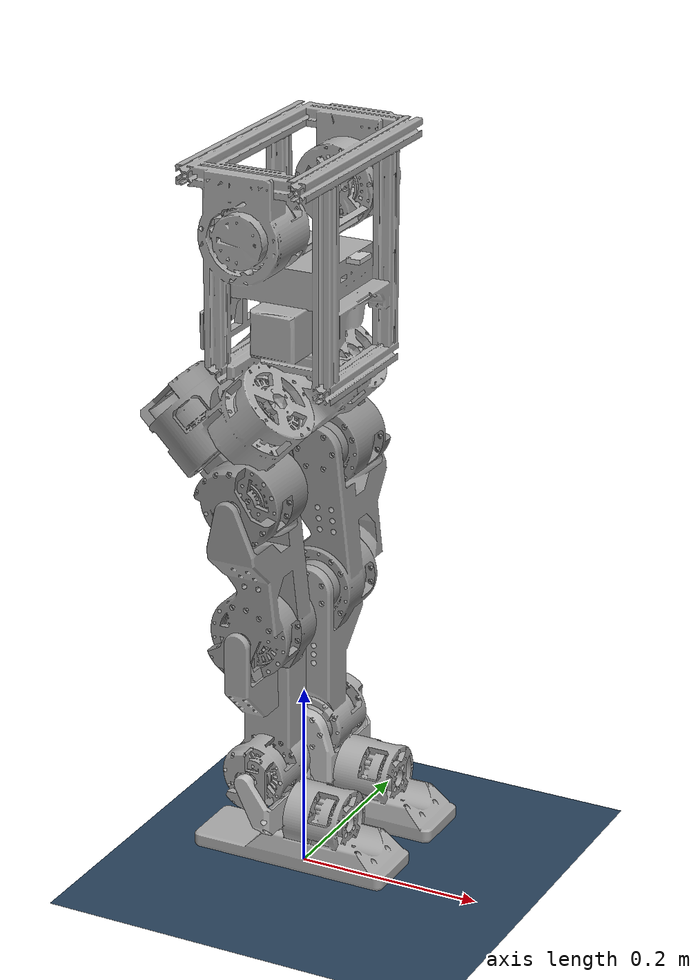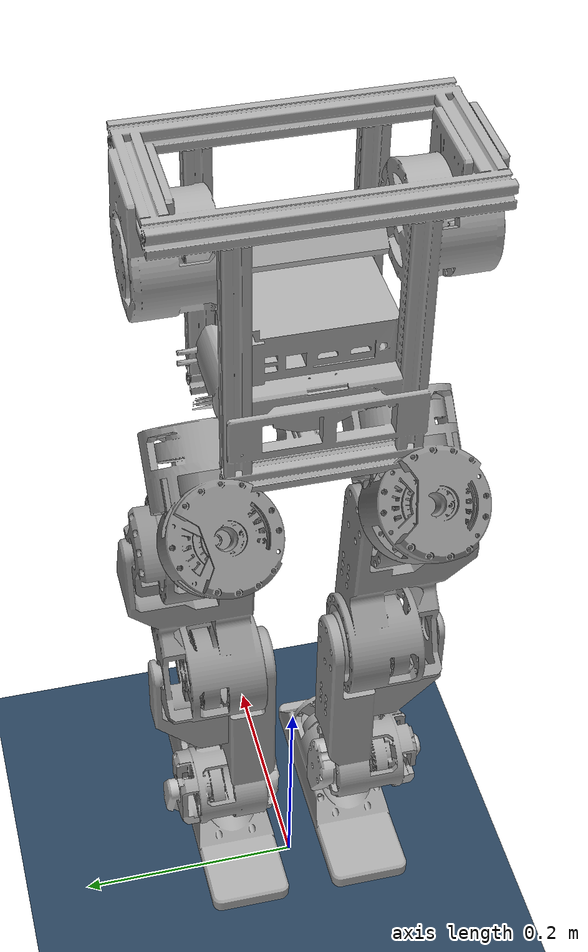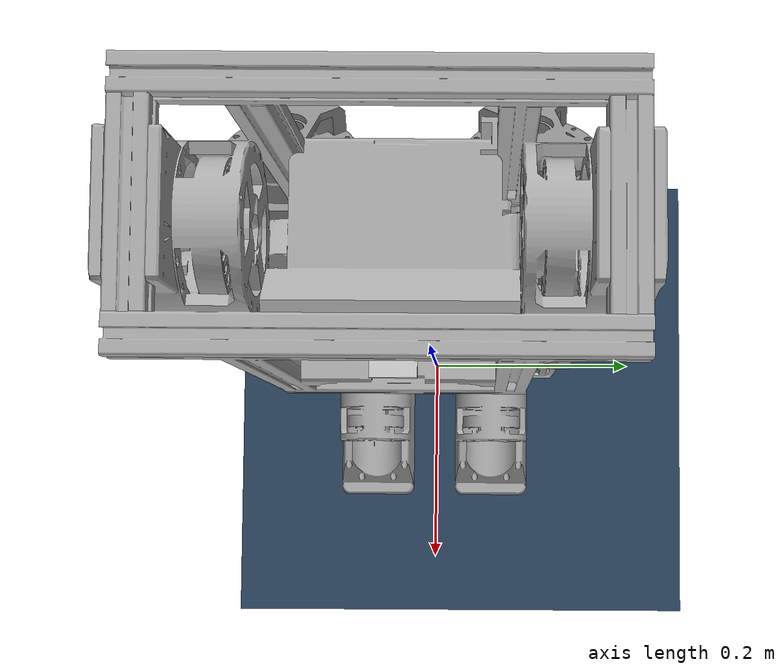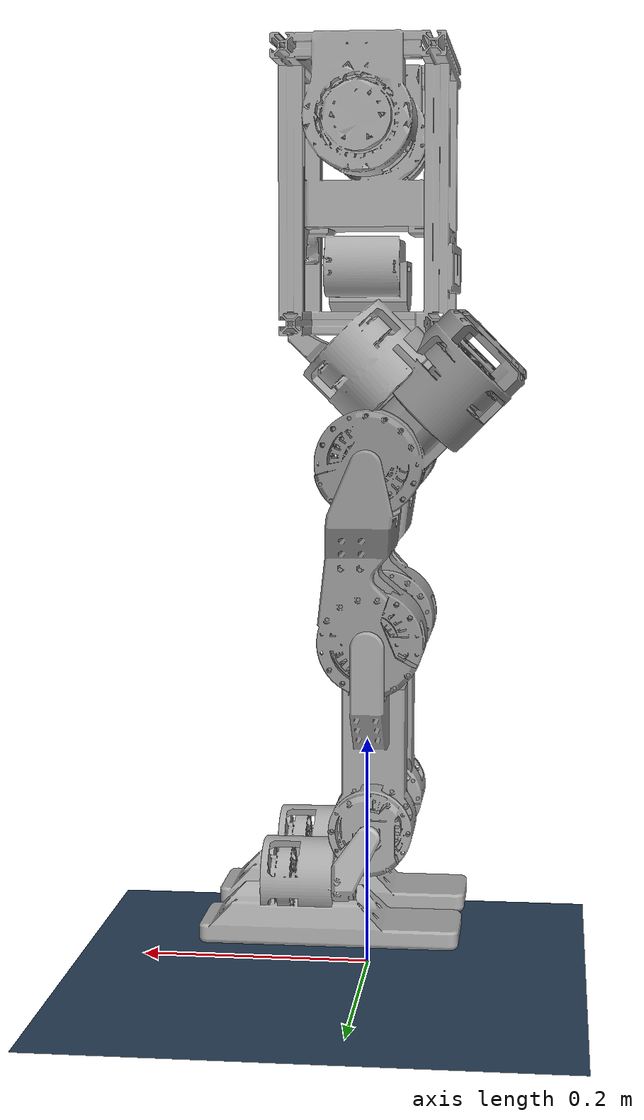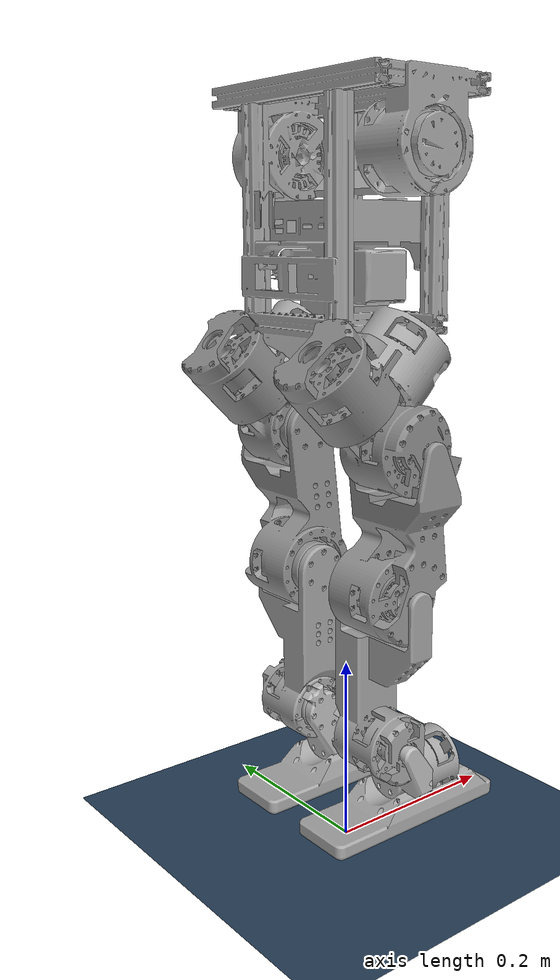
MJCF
<mujoco model="berkeley-humanoid-lite-biped-scene">
  <include file="berkeley_humanoid_lite_biped.xml"/>

  <statistic center="0 0 0.1" extent="0.8"/>

  <visual>
    <headlight diffuse="0.6 0.6 0.6" ambient="0.3 0.3 0.3" specular="0 0 0"/>
    <rgba haze="0.15 0.25 0.35 1"/>
    <global azimuth="120" elevation="-20"/>
  </visual>

  <asset>
    <texture type="skybox" builtin="gradient" rgb1="0.3 0.5 0.7" rgb2="0 0 0" width="512" height="3072"/>
    <texture type="2d" name="groundplane" builtin="checker" mark="edge" rgb1="0.2 0.3 0.4" rgb2="0.1 0.2 0.3"
      markrgb="0.8 0.8 0.8" width="300" height="300"/>
    <material name="groundplane" texture="groundplane" texuniform="true" texrepeat="5 5" reflectance="0.2"/>
  </asset>

  <worldbody>
    <light pos="0 0 1.5" dir="0 0 -1" directional="true"/>
    <geom name="floor" size="0 0 0.05" type="plane" material="groundplane"/>
  </worldbody>
</mujoco>

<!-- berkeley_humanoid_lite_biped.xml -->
<!-- Generated using onshape-to-robot -->
<!-- Onshape document_id: fc6443b1d89dcba950e85b60 -->
<mujoco model="berkeley-humanoid-lite">
  <compiler angle="radian" meshdir="assets" autolimits="true"/>
  <default>
    <default class="berkeley-humanoid-lite">
      <joint frictionloss="0.1" armature="0.005"/>
      <position kp="50" dampratio="1"/>
      <default class="visual">
        <geom type="mesh" contype="0" conaffinity="0" group="2"/>
      </default>
      <default class="collision">
        <geom group="3"/>
      </default>
    </default>
  </default>
  <worldbody>
    <!-- Link base -->
    <body name="base" pos="0 0 0" quat="1 0 0 0" childclass="berkeley-humanoid-lite">
      <freejoint name="base_freejoint"/>
      <inertial pos="-0.00461671 0.000372279 0.637874" mass="3.16059" fullinertia="0.0372453 0.0282653 0.0176468 -4.06135e-06 -0.000720627 -1.49369e-05"/>
      <!-- Part base_parts -->
      <geom class="collision" pos="-6.93889e-18 7.53521e-18 0.71" quat="0.707107 -2.11466e-15 1.77636e-15 -0.707107" type="box" size="0.075 0.07 0.115"/>
      <geom type="mesh" class="visual" pos="-0.00461671 0.000372279 0.637874" quat="1 0 0 0" mesh="base_visual" material="base_visual_material"/>
      <!-- Link imu_2 -->
      <body name="imu_2" pos="0.061722 -5.97549e-17 0.68" quat="1 -0 5.55112e-15 -6.03078e-16">
        <!-- Joint from base to imu_2 -->
        <!-- Joint is "fixed", skipping it -->
        <inertial pos="2.95445e-18 9.47955e-19 0.0025" mass="0.00197704" fullinertia="1.11441e-07 4.06118e-08 1.43815e-07 -1.67651e-38 0 7.34684e-40"/>
        <!-- Part imu_2_parts -->
        <geom type="mesh" class="visual" pos="0 9.47955e-19 0.0025" quat="1 -0 -5.44009e-15 6.03078e-16" mesh="imu_2_visual" material="imu_2_visual_material"/>
        <!-- Frame imu -->
        <site group="3" name="imu" pos="0 -6.33816e-19 0.005" quat="1 0 0 0"/>
      </body>
      <!-- Link leg_left_hip_roll -->
      <body name="leg_left_hip_roll" pos="-0.0290919 0.08 0.542631" quat="0.92388 1.48514e-15 0.382683 -3.22352e-15">
        <!-- Joint from base to leg_left_hip_roll -->
        <joint axis="0 0 1" name="leg_left_hip_roll_joint" type="hinge" range="-0.17453292519942673 1.5707963267949028"/>
        <inertial pos="-0.00410941 -0.000112596 -0.0464623" mass="0.83786" fullinertia="0.000979918 0.000896043 0.000727678 6.45954e-06 -1.63173e-05 -5.43389e-06"/>
        <!-- Part leg_left_hip_roll_parts -->
        <geom type="mesh" class="visual" pos="-0.00410941 -0.000112596 -0.0464623" quat="0.92388 -1.51757e-15 -0.382683 3.20399e-15" mesh="leg_left_hip_roll_visual" material="leg_left_hip_roll_visual_material"/>
        <!-- Link leg_left_hip_yaw -->
        <body name="leg_left_hip_yaw" pos="0.027 -1.38778e-17 -0.052" quat="0.5 -0.5 0.5 -0.5">
          <!-- Joint from leg_left_hip_roll to leg_left_hip_yaw -->
          <joint axis="0 0 1" name="leg_left_hip_yaw_joint" type="hinge" range="-0.9817477042468095 0.5890486225480871"/>
          <inertial pos="-0.00411632 -8.63203e-05 0.0463382" mass="0.837683" fullinertia="0.000979031 0.000898166 0.000724287 -1.13217e-06 1.96352e-05 -5.91541e-06"/>
          <!-- Part leg_left_hip_yaw_parts -->
          <geom type="mesh" class="visual" pos="-0.00411632 -8.63203e-05 0.0463382" quat="0.270598 0.653281 -0.653281 0.270598" mesh="leg_left_hip_yaw_visual" material="leg_left_hip_yaw_visual_material"/>
          <!-- Link leg_left_hip_pitch -->
          <body name="leg_left_hip_pitch" pos="0.027 5.55112e-17 0.052" quat="0.653281 0.270598 -0.653281 -0.270598">
            <!-- Joint from leg_left_hip_yaw to leg_left_hip_pitch -->
            <joint axis="0 0 1" name="leg_left_hip_pitch_joint" type="hinge" range="-1.8980455615438334 0.9817477042468103"/>
            <inertial pos="0.0030405 0.120388 0.0210924" mass="0.947974" fullinertia="0.00286449 0.00102465 0.00259958 0.00012235 -2.15676e-05 0.000265775"/>
            <!-- Part leg_left_hip_pitch_parts -->
            <geom class="collision" pos="0.00597627 0.039 0.0295" quat="0.5 0.5 0.5 -0.5" type="cylinder" size="0.05 0.065"/>
            <geom type="mesh" class="visual" pos="0.0030405 0.120388 0.0210924" quat="0.707107 0.707107 -3.77476e-15 1.5388e-15" mesh="leg_left_hip_pitch_visual" material="leg_left_hip_pitch_visual_material"/>
            <!-- Link leg_left_knee_pitch -->
            <body name="leg_left_knee_pitch" pos="4.02456e-16 0.15 -0.018" quat="9.83274e-15 4.47488e-16 2.22045e-16 -1">
              <!-- Joint from leg_left_hip_pitch to leg_left_knee_pitch -->
              <joint axis="0 0 1" name="leg_left_knee_pitch_joint" type="hinge" range="-2.7711166694643907e-13 2.443460952791784"/>
              <inertial pos="-4.14041e-05 -0.112249 0.0257397" mass="0.653864" fullinertia="0.00230126 0.000559753 0.00203727 -4.24923e-07 1.36589e-06 3.7889e-05"/>
              <!-- Part leg_left_knee_pitch_parts -->
              <geom class="collision" pos="-5.42149e-15 -0.115 0.022" quat="0.5 -0.5 0.5 0.5" type="cylinder" size="0.04 0.075"/>
              <geom type="mesh" class="visual" pos="-4.14041e-05 -0.112249 0.0257397" quat="5.61286e-15 1.04083e-14 0.707107 0.707107" mesh="leg_left_knee_pitch_visual" material="leg_left_knee_pitch_visual_material"/>
              <!-- Link leg_left_ankle_pitch -->
              <body name="leg_left_ankle_pitch" pos="-2.44943e-15 -0.16 -0.003" quat="7.23276e-14 3.08655e-16 4.44089e-16 -1">
                <!-- Joint from leg_left_knee_pitch to leg_left_ankle_pitch -->
                <joint axis="0 0 1" name="leg_left_ankle_pitch_joint" type="hinge" range="-0.7853981633972573 0.7853981633976392"/>
                <inertial pos="0.0131065 0.0273743 0.0274153" mass="0.106196" fullinertia="0.000188241 0.000142962 8.17202e-05 -2.50802e-05 -7.26755e-06 -7.72963e-06"/>
                <!-- Part leg_left_ankle_pitch_parts -->
                <geom type="mesh" class="visual" pos="0.0131065 0.0273743 0.0274153" quat="0.707107 0.707107 -6.18394e-14 -5.65723e-14" mesh="leg_left_ankle_pitch_visual" material="leg_left_ankle_pitch_visual_material"/>
                <!-- Link leg_left_ankle_roll -->
                <body name="leg_left_ankle_roll" pos="0.03 0.05 0.025" quat="0.707107 5.97287e-14 0.707107 6.29358e-14">
                  <!-- Joint from leg_left_ankle_pitch to leg_left_ankle_roll -->
                  <joint axis="0 0 1" name="leg_left_ankle_roll_joint" type="hinge" range="-0.26179938779931816 0.26179938779898065"/>
                  <inertial pos="2.29341e-05 0.0226611 0.0197836" mass="0.706476" fullinertia="0.00198705 0.00190341 0.000619673 5.37011e-07 -8.3949e-07 0.000143151"/>
                  <!-- Part leg_left_ankle_roll_parts -->
                  <geom class="collision" pos="1.45315e-14 0.03 0.006" quat="0.707107 0.707107 -8.02691e-14 3.1405e-14" type="box" size="0.036 0.11 0.02"/>
                  <geom type="mesh" class="visual" pos="2.29341e-05 0.0226611 0.0197836" quat="0.5 0.5 -0.5 0.5" mesh="leg_left_ankle_roll_visual" material="leg_left_ankle_roll_visual_material"/>
                </body>
              </body>
            </body>
          </body>
        </body>
      </body>
      <!-- Link leg_right_hip_roll -->
      <body name="leg_right_hip_roll" pos="-0.0290919 -0.08 0.542631" quat="3.33405e-15 0.382683 -1.44329e-15 0.92388">
        <!-- Joint from base to leg_right_hip_roll -->
        <joint axis="0 0 1" name="leg_right_hip_roll_joint" type="hinge" range="-1.5707963267948895 0.17453292519944005"/>
        <inertial pos="0.00410941 -0.00018505 -0.0464478" mass="0.83786" fullinertia="0.000979766 0.000896334 0.000727235 -3.69135e-06 1.57667e-05 -4.74708e-06"/>
        <!-- Part leg_right_hip_roll_parts -->
        <geom type="mesh" class="visual" pos="0.00410941 -0.00018505 -0.0464478" quat="3.28567e-15 -0.382683 1.44329e-15 -0.92388" mesh="leg_right_hip_roll_visual" material="leg_right_hip_roll_visual_material"/>
        <!-- Link leg_right_hip_yaw -->
        <body name="leg_right_hip_yaw" pos="-0.027 -1.38778e-17 -0.052" quat="0.5 -0.5 -0.5 0.5">
          <!-- Joint from leg_right_hip_roll to leg_right_hip_yaw -->
          <joint axis="0 0 1" name="leg_right_hip_yaw_joint" type="hinge" range="-0.5890486225480871 0.9817477042468095"/>
          <inertial pos="0.00411632 -1.3851e-05 0.0463238" mass="0.837683" fullinertia="0.000978901 0.000898454 0.000723868 -1.63559e-06 -1.90847e-05 -5.23378e-06"/>
          <!-- Part leg_right_hip_yaw_parts -->
          <geom type="mesh" class="visual" pos="0.00411632 -1.3851e-05 0.0463238" quat="0.270598 0.653281 -0.653281 0.270598" mesh="leg_right_hip_yaw_visual" material="leg_right_hip_yaw_visual_material"/>
          <!-- Link leg_right_hip_pitch -->
          <body name="leg_right_hip_pitch" pos="-0.027 -2.77556e-16 0.052" quat="0.653281 0.270598 -0.653281 -0.270598">
            <!-- Joint from leg_right_hip_yaw to leg_right_hip_pitch -->
            <joint axis="0 0 1" name="leg_right_hip_pitch_joint" type="hinge" range="-1.8980455615438334 0.9817477042468103"/>
            <inertial pos="0.00319928 0.120388 -0.0210924" mass="0.947974" fullinertia="0.00286448 0.00102371 0.00259864 0.000117078 2.6845e-05 -0.000265774"/>
            <!-- Part leg_right_hip_pitch_parts -->
            <geom class="collision" pos="0.00597627 0.039 -0.0295" quat="0.5 0.5 0.5 -0.5" type="cylinder" size="0.05 0.065"/>
            <geom type="mesh" class="visual" pos="0.00319928 0.120388 -0.0210924" quat="0.707107 0.707107 -3.33067e-15 1.54477e-15" mesh="leg_right_hip_pitch_visual" material="leg_right_hip_pitch_visual_material"/>
            <!-- Link leg_right_knee_pitch -->
            <body name="leg_right_knee_pitch" pos="0 0.15 0.018" quat="1 0 -6.93889e-17 2.04003e-16">
              <!-- Joint from leg_right_hip_pitch to leg_right_knee_pitch -->
              <joint axis="0 0 1" name="leg_right_knee_pitch_joint" type="hinge" range="-1.0835776720341528e-13 2.443460952791953"/>
              <inertial pos="-5.09429e-05 0.112249 -0.0257397" mass="0.653864" fullinertia="0.00230126 0.000559752 0.00203727 1.34936e-06 -1.17826e-06 3.7889e-05"/>
              <!-- Part leg_right_knee_pitch_parts -->
              <geom class="collision" pos="1.15514e-14 0.115 -0.022" quat="0.5 0.5 0.5 -0.5" type="cylinder" size="0.04 0.075"/>
              <geom type="mesh" class="visual" pos="-5.09429e-05 0.112249 -0.0257397" quat="0.707107 0.707107 -3.33067e-15 1.47391e-15" mesh="leg_right_knee_pitch_visual" material="leg_right_knee_pitch_visual_material"/>
              <!-- Link leg_right_ankle_pitch -->
              <body name="leg_right_ankle_pitch" pos="1.42421e-15 0.16 0.003" quat="1 5.55112e-17 -1.66533e-16 -4.25433e-14">
                <!-- Joint from leg_right_knee_pitch to leg_right_ankle_pitch -->
                <joint axis="0 0 1" name="leg_right_ankle_pitch_joint" type="hinge" range="-0.7853981633975149 0.7853981633973817"/>
                <inertial pos="0.0131065 0.0273743 -0.0274153" mass="0.106196" fullinertia="0.000188241 0.000142962 8.17203e-05 -2.50802e-05 7.26754e-06 7.72962e-06"/>
                <!-- Part leg_right_ankle_pitch_parts -->
                <geom type="mesh" class="visual" pos="0.0131065 0.0273743 -0.0274153" quat="0.707107 0.707107 2.67564e-14 3.15316e-14" mesh="leg_right_ankle_pitch_visual" material="leg_right_ankle_pitch_visual_material"/>
                <!-- Link leg_right_ankle_roll -->
                <body name="leg_right_ankle_roll" pos="0.03 0.05 -0.025" quat="0.707107 3.97765e-14 0.707107 5.09847e-14">
                  <!-- Joint from leg_right_ankle_pitch to leg_right_ankle_roll -->
                  <joint axis="0 0 1" name="leg_right_ankle_roll_joint" type="hinge" range="-0.26179938779927375 0.26179938779902506"/>
                  <inertial pos="2.29341e-05 0.0226611 0.0197836" mass="0.706476" fullinertia="0.00198705 0.00190341 0.000619673 5.37011e-07 -8.3949e-07 0.000143151"/>
                  <!-- Part leg_right_ankle_roll_parts -->
                  <geom class="collision" pos="6.39201e-15 0.03 0.006" quat="0.707107 0.707107 8.41549e-14 -2.33354e-13" type="box" size="0.036 0.11 0.02"/>
                  <geom type="mesh" class="visual" pos="2.29341e-05 0.0226611 0.0197836" quat="0.5 0.5 -0.5 0.5" mesh="leg_right_ankle_roll_visual" material="leg_right_ankle_roll_visual_material"/>
                </body>
              </body>
            </body>
          </body>
        </body>
      </body>
    </body>
  </worldbody>
  <asset>
    <mesh file="merged/base_visual.stl"/>
    <mesh file="merged/leg_left_knee_pitch_visual.stl"/>
    <mesh file="merged/leg_right_hip_pitch_visual.stl"/>
    <mesh file="merged/leg_left_hip_yaw_visual.stl"/>
    <mesh file="merged/leg_right_hip_yaw_visual.stl"/>
    <mesh file="merged/leg_left_hip_pitch_visual.stl"/>
    <mesh file="merged/leg_left_hip_roll_visual.stl"/>
    <mesh file="merged/leg_right_hip_roll_visual.stl"/>
    <mesh file="merged/leg_right_knee_pitch_visual.stl"/>
    <mesh file="merged/leg_left_ankle_roll_visual.stl"/>
    <mesh file="merged/leg_right_ankle_roll_visual.stl"/>
    <mesh file="merged/imu_2_visual.stl"/>
    <mesh file="merged/leg_right_ankle_pitch_visual.stl"/>
    <mesh file="merged/leg_left_ankle_pitch_visual.stl"/>
    <material name="base_visual_material" rgba="0.67254 0.67254 0.67254 1"/>
    <material name="imu_2_visual_material" rgba="0.8 0.8 0.8 1"/>
    <material name="leg_left_hip_roll_visual_material" rgba="0.559597 0.559597 0.559597 1"/>
    <material name="leg_left_hip_yaw_visual_material" rgba="0.559547 0.559547 0.559547 1"/>
    <material name="leg_left_hip_pitch_visual_material" rgba="0.587522 0.587522 0.587522 1"/>
    <material name="leg_left_knee_pitch_visual_material" rgba="0.644721 0.644721 0.644721 1"/>
    <material name="leg_left_ankle_pitch_visual_material" rgba="0.743029 0.743029 0.743029 1"/>
    <material name="leg_left_ankle_roll_visual_material" rgba="0.664849 0.664849 0.664849 1"/>
    <material name="leg_right_hip_roll_visual_material" rgba="0.559597 0.559597 0.559597 1"/>
    <material name="leg_right_hip_yaw_visual_material" rgba="0.559547 0.559547 0.559547 1"/>
    <material name="leg_right_hip_pitch_visual_material" rgba="0.587522 0.587522 0.587522 1"/>
    <material name="leg_right_knee_pitch_visual_material" rgba="0.644721 0.644721 0.644721 1"/>
    <material name="leg_right_ankle_pitch_visual_material" rgba="0.743029 0.743029 0.743029 1"/>
    <material name="leg_right_ankle_roll_visual_material" rgba="0.664849 0.664849 0.664849 1"/>
  </asset>
  <actuator>
    <motor class="berkeley-humanoid-lite" name="leg_left_hip_roll_joint" joint="leg_left_hip_roll_joint" forcerange="-20 20"/>
    <motor class="berkeley-humanoid-lite" name="leg_left_hip_yaw_joint" joint="leg_left_hip_yaw_joint" forcerange="-20 20"/>
    <motor class="berkeley-humanoid-lite" name="leg_left_hip_pitch_joint" joint="leg_left_hip_pitch_joint" forcerange="-20 20"/>
    <motor class="berkeley-humanoid-lite" name="leg_left_knee_pitch_joint" joint="leg_left_knee_pitch_joint" forcerange="-20 20"/>
    <motor class="berkeley-humanoid-lite" name="leg_left_ankle_pitch_joint" joint="leg_left_ankle_pitch_joint" forcerange="-20 20"/>
    <motor class="berkeley-humanoid-lite" name="leg_left_ankle_roll_joint" joint="leg_left_ankle_roll_joint" forcerange="-20 20"/>
    <motor class="berkeley-humanoid-lite" name="leg_right_hip_roll_joint" joint="leg_right_hip_roll_joint" forcerange="-20 20"/>
    <motor class="berkeley-humanoid-lite" name="leg_right_hip_yaw_joint" joint="leg_right_hip_yaw_joint" forcerange="-20 20"/>
    <motor class="berkeley-humanoid-lite" name="leg_right_hip_pitch_joint" joint="leg_right_hip_pitch_joint" forcerange="-20 20"/>
    <motor class="berkeley-humanoid-lite" name="leg_right_knee_pitch_joint" joint="leg_right_knee_pitch_joint" forcerange="-20 20"/>
    <motor class="berkeley-humanoid-lite" name="leg_right_ankle_pitch_joint" joint="leg_right_ankle_pitch_joint" forcerange="-20 20"/>
    <motor class="berkeley-humanoid-lite" name="leg_right_ankle_roll_joint" joint="leg_right_ankle_roll_joint" forcerange="-20 20"/>
  </actuator>

  <sensor>
    <jointpos name="leg_left_hip_roll_pos"        joint="leg_left_hip_roll_joint"/>
    <jointpos name="leg_left_hip_yaw_pos"         joint="leg_left_hip_yaw_joint"/>
    <jointpos name="leg_left_hip_pitch_pos"       joint="leg_left_hip_pitch_joint"/>
    <jointpos name="leg_left_knee_pitch_pos"      joint="leg_left_knee_pitch_joint"/>
    <jointpos name="leg_left_ankle_pitch_pos"     joint="leg_left_ankle_pitch_joint"/>
    <jointpos name="leg_left_ankle_roll_pos"      joint="leg_left_ankle_roll_joint"/>
    <jointpos name="leg_right_hip_roll_pos"       joint="leg_right_hip_roll_joint"/>
    <jointpos name="leg_right_hip_yaw_pos"        joint="leg_right_hip_yaw_joint"/>
    <jointpos name="leg_right_hip_pitch_pos"      joint="leg_right_hip_pitch_joint"/>
    <jointpos name="leg_right_knee_pitch_pos"     joint="leg_right_knee_pitch_joint"/>
    <jointpos name="leg_right_ankle_pitch_pos"    joint="leg_right_ankle_pitch_joint"/>
    <jointpos name="leg_right_ankle_roll_pos"     joint="leg_right_ankle_roll_joint"/>

    <jointvel name="leg_left_hip_roll_vel"        joint="leg_left_hip_roll_joint"/>
    <jointvel name="leg_left_hip_yaw_vel"         joint="leg_left_hip_yaw_joint"/>
    <jointvel name="leg_left_hip_pitch_vel"       joint="leg_left_hip_pitch_joint"/>
    <jointvel name="leg_left_knee_pitch_vel"      joint="leg_left_knee_pitch_joint"/>
    <jointvel name="leg_left_ankle_pitch_vel"     joint="leg_left_ankle_pitch_joint"/>
    <jointvel name="leg_left_ankle_roll_vel"      joint="leg_left_ankle_roll_joint"/>
    <jointvel name="leg_right_hip_roll_vel"       joint="leg_right_hip_roll_joint"/>
    <jointvel name="leg_right_hip_yaw_vel"        joint="leg_right_hip_yaw_joint"/>
    <jointvel name="leg_right_hip_pitch_vel"      joint="leg_right_hip_pitch_joint"/>
    <jointvel name="leg_right_knee_pitch_vel"     joint="leg_right_knee_pitch_joint"/>
    <jointvel name="leg_right_ankle_pitch_vel"    joint="leg_right_ankle_pitch_joint"/>
    <jointvel name="leg_right_ankle_roll_vel"     joint="leg_right_ankle_roll_joint"/>

    <jointactuatorfrc name="leg_left_hip_roll_torque"         joint="leg_left_hip_roll_joint"/>
    <jointactuatorfrc name="leg_left_hip_yaw_torque"          joint="leg_left_hip_yaw_joint"/>
    <jointactuatorfrc name="leg_left_hip_pitch_torque"        joint="leg_left_hip_pitch_joint"/>
    <jointactuatorfrc name="leg_left_knee_pitch_torque"       joint="leg_left_knee_pitch_joint"/>
    <jointactuatorfrc name="leg_left_ankle_pitch_torque"      joint="leg_left_ankle_pitch_joint"/>
    <jointactuatorfrc name="leg_left_ankle_roll_torque"       joint="leg_left_ankle_roll_joint"/>
    <jointactuatorfrc name="leg_right_hip_roll_torque"        joint="leg_right_hip_roll_joint"/>
    <jointactuatorfrc name="leg_right_hip_yaw_torque"         joint="leg_right_hip_yaw_joint"/>
    <jointactuatorfrc name="leg_right_hip_pitch_torque"       joint="leg_right_hip_pitch_joint"/>
    <jointactuatorfrc name="leg_right_knee_pitch_torque"      joint="leg_right_knee_pitch_joint"/>
    <jointactuatorfrc name="leg_right_ankle_pitch_torque"     joint="leg_right_ankle_pitch_joint"/>
    <jointactuatorfrc name="leg_right_ankle_roll_torque"      joint="leg_right_ankle_roll_joint"/>

    <framequat name="imu_quat" objtype="site" objname="imu" />
    <gyro name="imu_gyro" site="imu" />
    <accelerometer name="imu_acc" site="imu" />
    <framepos name="frame_pos" objtype="site" objname="imu" />
    <framelinvel name="frame_vel" objtype="site" objname="imu" />
  </sensor>
<equality/>
</mujoco>
